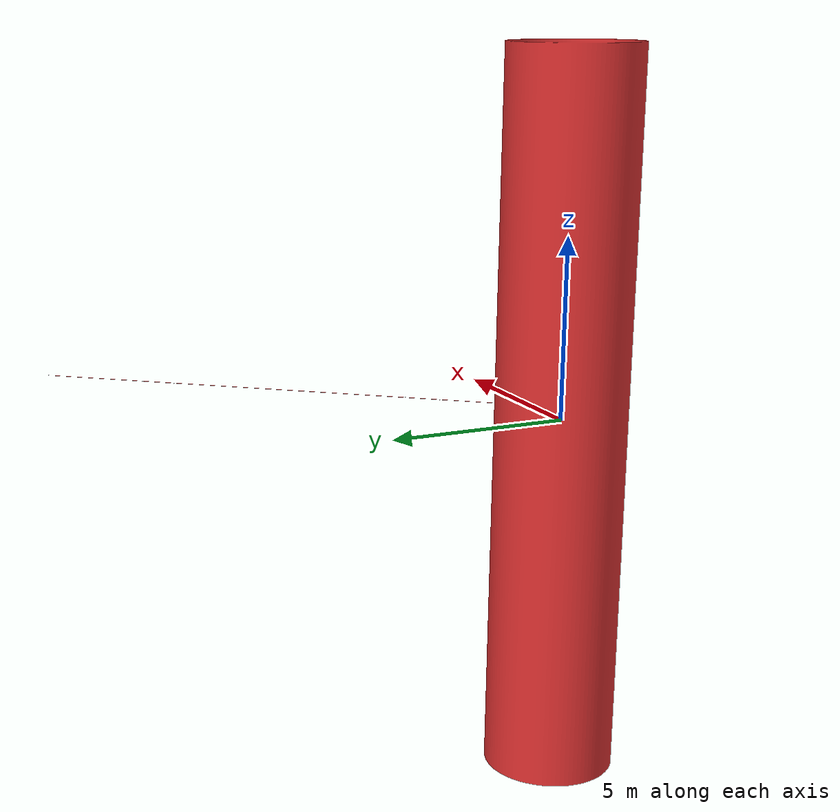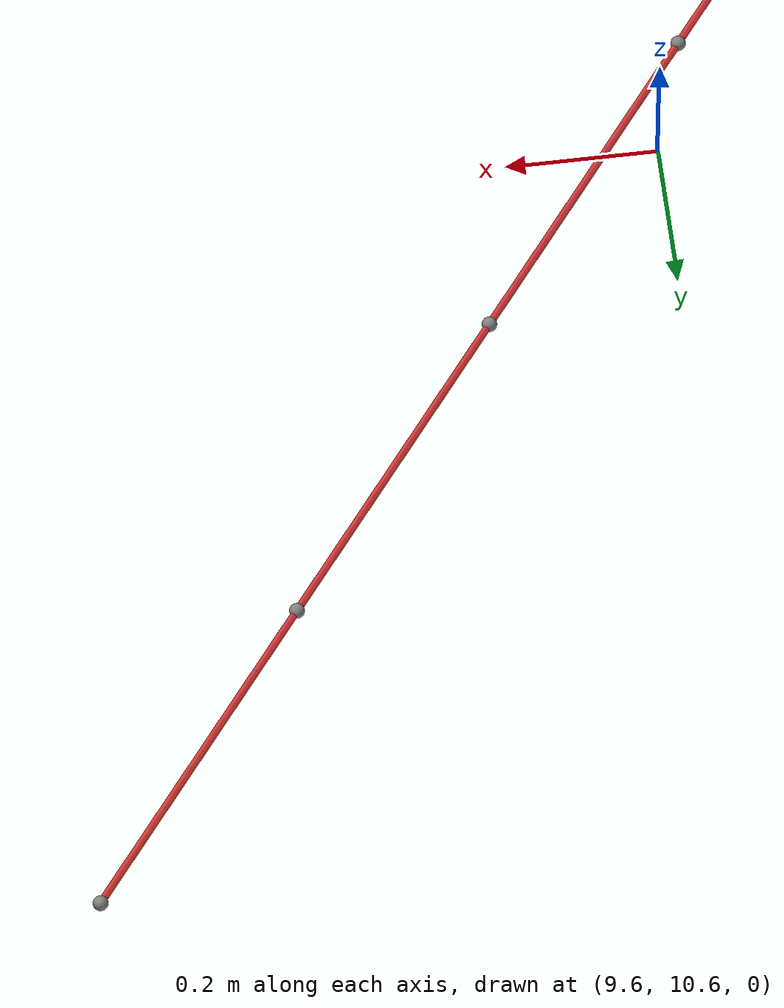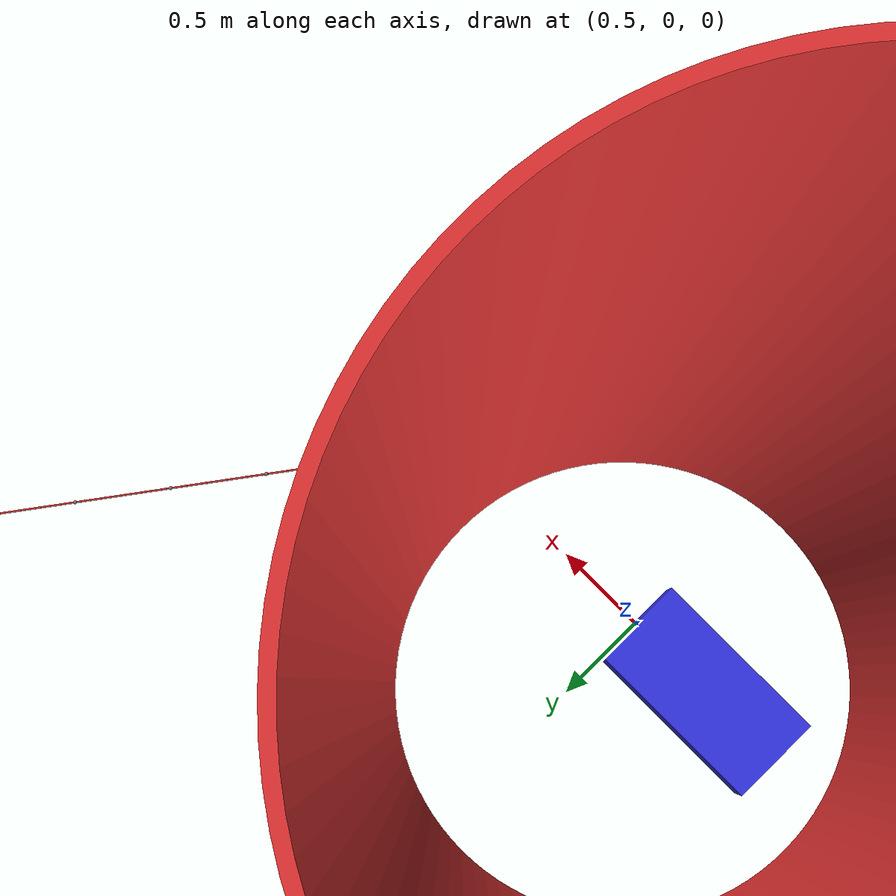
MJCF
<mujoco>
  <!-- The default integrator (ImplicitFast) leads to gradual numerical drift that leads to stability issues -->
  <option gravity="0 0 0" viscosity="0" integrator="RK4"/>

  <asset>
    <mesh name="sat_mesh" file="/Users/matthew/Library/CloudStorage/OneDrive-Stanford/Desktop/BDML/Gecko Lasso Simulation/GeckoLassoPythonSim/3DModels/._Repositioned_SatelliteNGPayload.obj"/>
    <mesh name="av_mesh" file="/Users/matthew/Library/CloudStorage/OneDrive-Stanford/Desktop/BDML/Gecko Lasso Simulation/GeckoLassoPythonSim/3DModels/._Repositioned_AV_1_0p5_0p5.obj"/>
  </asset>

  <worldbody>
    <light diffuse=".5 .5 .5" pos="0 0 3" dir="0 0 -1"/>

    <body name="sat_body" pos="0 0 0">
      <joint name="joint1" type="free"/>
      <geom type="mesh" mesh="sat_mesh" rgba="0.9 0.2 0.2 1"/>

      <site name="sat_anchor" pos="1.8 0 0" size="0.01"/>

      <!-- Placeholder for the rope beads that help prescribe the rope behavior -->
        <body name="link_0" pos="1.8 0 0">
            <joint type="ball"/>
            <geom name="geom_link_0" type="sphere" size="0.01" contype="1" conaffinity="1"/>
            <site name="site_link_0" pos="0 0 0" size="0.005"/>
            <body name="link_1" pos="0.29816198348999023 0.40137192606925964 0.0">
                <joint type="ball"/>
                <geom name="geom_link_1" type="sphere" size="0.01" contype="1" conaffinity="1"/>
                <site name="site_link_1" pos="0 0 0" size="0.005"/>
                <body name="link_2" pos="0.29816198348999023 0.40137192606925964 0.0">
                    <joint type="ball"/>
                    <geom name="geom_link_2" type="sphere" size="0.01" contype="1" conaffinity="1"/>
                    <site name="site_link_2" pos="0 0 0" size="0.005"/>
                    <body name="link_3" pos="0.29816198348999023 0.40137192606925964 0.0">
                        <joint type="ball"/>
                        <geom name="geom_link_3" type="sphere" size="0.01" contype="1" conaffinity="1"/>
                        <site name="site_link_3" pos="0 0 0" size="0.005"/>
                        <body name="link_4" pos="0.29816198348999023 0.40137192606925964 0.0">
                            <joint type="ball"/>
                            <geom name="geom_link_4" type="sphere" size="0.01" contype="1" conaffinity="1"/>
                            <site name="site_link_4" pos="0 0 0" size="0.005"/>
                            <body name="link_5" pos="0.29816198348999023 0.40137192606925964 0.0">
                                <joint type="ball"/>
                                <geom name="geom_link_5" type="sphere" size="0.01" contype="1" conaffinity="1"/>
                                <site name="site_link_5" pos="0 0 0" size="0.005"/>
                                <body name="link_6" pos="0.29816198348999023 0.40137192606925964 0.0">
                                    <joint type="ball"/>
                                    <geom name="geom_link_6" type="sphere" size="0.01" contype="1" conaffinity="1"/>
                                    <site name="site_link_6" pos="0 0 0" size="0.005"/>
                                    <body name="link_7" pos="0.29816198348999023 0.40137192606925964 0.0">
                                        <joint type="ball"/>
                                        <geom name="geom_link_7" type="sphere" size="0.01" contype="1" conaffinity="1"/>
                                        <site name="site_link_7" pos="0 0 0" size="0.005"/>
                                        <body name="link_8" pos="0.29816198348999023 0.40137192606925964 0.0">
                                            <joint type="ball"/>
                                            <geom name="geom_link_8" type="sphere" size="0.01" contype="1" conaffinity="1"/>
                                            <site name="site_link_8" pos="0 0 0" size="0.005"/>
                                            <body name="link_9" pos="0.29816198348999023 0.40137192606925964 0.0">
                                                <joint type="ball"/>
                                                <geom name="geom_link_9" type="sphere" size="0.01" contype="1" conaffinity="1"/>
                                                <site name="site_link_9" pos="0 0 0" size="0.005"/>
                                                <body name="link_10" pos="0.29816198348999023 0.40137192606925964 0.0">
                                                    <joint type="ball"/>
                                                    <geom name="geom_link_10" type="sphere" size="0.01" contype="1" conaffinity="1"/>
                                                    <site name="site_link_10" pos="0 0 0" size="0.005"/>
                                                    <body name="link_11" pos="0.29816198348999023 0.40137192606925964 0.0">
                                                        <joint type="ball"/>
                                                        <geom name="geom_link_11" type="sphere" size="0.01" contype="1" conaffinity="1"/>
                                                        <site name="site_link_11" pos="0 0 0" size="0.005"/>
                                                        <body name="link_12" pos="0.29816198348999023 0.40137192606925964 0.0">
                                                            <joint type="ball"/>
                                                            <geom name="geom_link_12" type="sphere" size="0.01" contype="1" conaffinity="1"/>
                                                            <site name="site_link_12" pos="0 0 0" size="0.005"/>
                                                            <body name="link_13" pos="0.29816198348999023 0.40137192606925964 0.0">
                                                                <joint type="ball"/>
                                                                <geom name="geom_link_13" type="sphere" size="0.01" contype="1" conaffinity="1"/>
                                                                <site name="site_link_13" pos="0 0 0" size="0.005"/>
                                                                <body name="link_14" pos="0.29816198348999023 0.40137192606925964 0.0">
                                                                    <joint type="ball"/>
                                                                    <geom name="geom_link_14" type="sphere" size="0.01" contype="1" conaffinity="1"/>
                                                                    <site name="site_link_14" pos="0 0 0" size="0.005"/>
                                                                    <body name="link_15" pos="0.29816198348999023 0.40137192606925964 0.0">
                                                                        <joint type="ball"/>
                                                                        <geom name="geom_link_15" type="sphere" size="0.01" contype="1" conaffinity="1"/>
                                                                        <site name="site_link_15" pos="0 0 0" size="0.005"/>
                                                                        <body name="link_16" pos="0.29816198348999023 0.40137192606925964 0.0">
                                                                            <joint type="ball"/>
                                                                            <geom name="geom_link_16" type="sphere" size="0.01" contype="1" conaffinity="1"/>
                                                                            <site name="site_link_16" pos="0 0 0" size="0.005"/>
                                                                            <body name="link_17" pos="0.29816198348999023 0.40137192606925964 0.0">
                                                                                <joint type="ball"/>
                                                                                <geom name="geom_link_17" type="sphere" size="0.01" contype="1" conaffinity="1"/>
                                                                                <site name="site_link_17" pos="0 0 0" size="0.005"/>
                                                                                <body name="link_18" pos="0.29816198348999023 0.40137192606925964 0.0">
                                                                                    <joint type="ball"/>
                                                                                    <geom name="geom_link_18" type="sphere" size="0.01" contype="1" conaffinity="1"/>
                                                                                    <site name="site_link_18" pos="0 0 0" size="0.005"/>
                                                                                    <body name="link_19" pos="0.29816198348999023 0.40137192606925964 0.0">
                                                                                        <joint type="ball"/>
                                                                                        <geom name="geom_link_19" type="sphere" size="0.01" contype="1" conaffinity="1"/>
                                                                                        <site name="site_link_19" pos="0 0 0" size="0.005"/>
                                                                                        <body name="link_20" pos="0.29816198348999023 0.40137192606925964 0.0">
                                                                                            <joint type="ball"/>
                                                                                            <geom name="geom_link_20" type="sphere" size="0.01" contype="1" conaffinity="1"/>
                                                                                            <site name="site_link_20" pos="0 0 0" size="0.005"/>
                                                                                            <body name="link_21" pos="0.29816198348999023 0.40137192606925964 0.0">
                                                                                                <joint type="ball"/>
                                                                                                <geom name="geom_link_21" type="sphere" size="0.01" contype="1" conaffinity="1"/>
                                                                                                <site name="site_link_21" pos="0 0 0" size="0.005"/>
                                                                                                <body name="link_22" pos="0.29816198348999023 0.40137192606925964 0.0">
                                                                                                    <joint type="ball"/>
                                                                                                    <geom name="geom_link_22" type="sphere" size="0.01" contype="1" conaffinity="1"/>
                                                                                                    <site name="site_link_22" pos="0 0 0" size="0.005"/>
                                                                                                    <body name="link_23" pos="0.29816198348999023 0.40137192606925964 0.0">
                                                                                                        <joint type="ball"/>
                                                                                                        <geom name="geom_link_23" type="sphere" size="0.01" contype="1" conaffinity="1"/>
                                                                                                        <site name="site_link_23" pos="0 0 0" size="0.005"/>
                                                                                                        <body name="link_24" pos="0.29816198348999023 0.40137192606925964 0.0">
                                                                                                            <joint type="ball"/>
                                                                                                            <geom name="geom_link_24" type="sphere" size="0.01" contype="1" conaffinity="1"/>
                                                                                                            <site name="site_link_24" pos="0 0 0" size="0.005"/>
                                                                                                            <body name="link_25" pos="0.29816198348999023 0.40137192606925964 0.0">
                                                                                                                <joint type="ball"/>
                                                                                                                <geom name="geom_link_25" type="sphere" size="0.01" contype="1" conaffinity="1"/>
                                                                                                                <site name="site_link_25" pos="0 0 0" size="0.005"/>
                                                                                                                <body name="link_26" pos="0.29816198348999023 0.40137192606925964 0.0">
                                                                                                                    <joint type="ball"/>
                                                                                                                    <geom name="geom_link_26" type="sphere" size="0.01" contype="1" conaffinity="1"/>
                                                                                                                    <site name="site_link_26" pos="0 0 0" size="0.005"/>
                                                                                                                    <body name="link_27" pos="0.29816198348999023 0.40137192606925964 0.0">
                                                                                                                        <joint type="ball"/>
                                                                                                                        <geom name="geom_link_27" type="sphere" size="0.01" contype="1" conaffinity="1"/>
                                                                                                                        <site name="site_link_27" pos="0 0 0" size="0.005"/>
                                                                                                                        <body name="link_28" pos="0.29816198348999023 0.40137192606925964 0.0">
                                                                                                                            <joint type="ball"/>
                                                                                                                            <geom name="geom_link_28" type="sphere" size="0.01" contype="1" conaffinity="1"/>
                                                                                                                            <site name="site_link_28" pos="0 0 0" size="0.005"/>
                                                                                                                            <body name="link_29" pos="0.29816198348999023 0.40137192606925964 0.0">
                                                                                                                                <joint type="ball"/>
                                                                                                                                <geom name="geom_link_29" type="sphere" size="0.01" contype="1" conaffinity="1"/>
                                                                                                                                <site name="site_link_29" pos="0 0 0" size="0.005"/>
                                                                                                                            </body>
                                                                                                                        </body>
                                                                                                                    </body>
                                                                                                                </body>
                                                                                                            </body>
                                                                                                        </body>
                                                                                                    </body>
                                                                                                </body>
                                                                                            </body>
                                                                                        </body>
                                                                                    </body>
                                                                                </body>
                                                                            </body>
                                                                        </body>
                                                                    </body>
                                                                </body>
                                                            </body>
                                                        </body>
                                                    </body>
                                                </body>
                                            </body>
                                        </body>
                                    </body>
                                </body>
                            </body>
                        </body>
                    </body>
                </body>
            </body>
        </body>

    </body>

    <body name="av_body" pos="0 0 0">
      <joint name="joint2" type="free"/>
      <geom type="mesh" mesh="av_mesh" rgba="0.2 0.2 0.9 1" />
    </body>
  </worldbody>

  <!-- Placeholder for tendon that goes through the bodies to help simulate the rope dynamics -->
  <tendon>
      <spatial name="string_tendon" limited="true" range="0 15.0" width="0.005" rgba="0.8 0.2 0.2 1">
        <site site="sat_anchor"/>
        <site site="site_link_0"/>
        <site site="site_link_1"/>
        <site site="site_link_2"/>
        <site site="site_link_3"/>
        <site site="site_link_4"/>
        <site site="site_link_5"/>
        <site site="site_link_6"/>
        <site site="site_link_7"/>
        <site site="site_link_8"/>
        <site site="site_link_9"/>
        <site site="site_link_10"/>
        <site site="site_link_11"/>
        <site site="site_link_12"/>
        <site site="site_link_13"/>
        <site site="site_link_14"/>
        <site site="site_link_15"/>
        <site site="site_link_16"/>
        <site site="site_link_17"/>
        <site site="site_link_18"/>
        <site site="site_link_19"/>
        <site site="site_link_20"/>
        <site site="site_link_21"/>
        <site site="site_link_22"/>
        <site site="site_link_23"/>
        <site site="site_link_24"/>
        <site site="site_link_25"/>
        <site site="site_link_26"/>
        <site site="site_link_27"/>
        <site site="site_link_28"/>
        <site site="site_link_29"/>
        </spatial>
  </tendon>

</mujoco>
